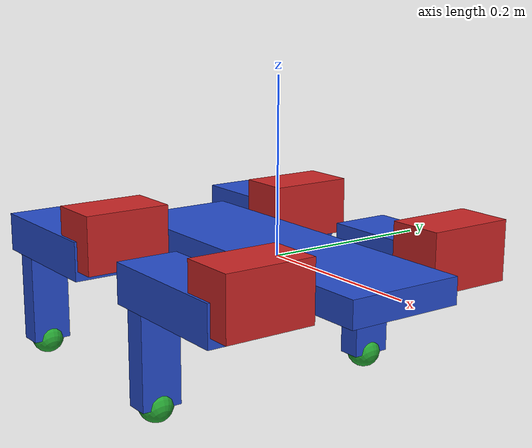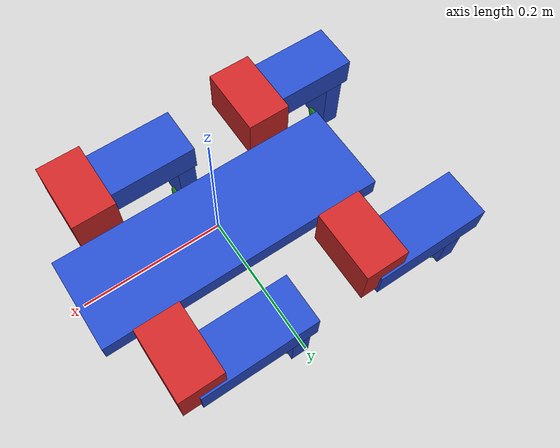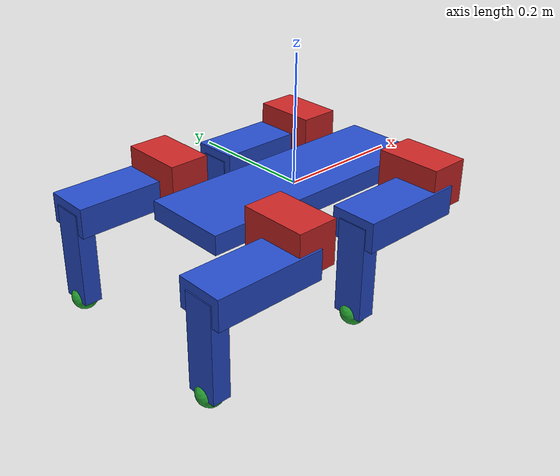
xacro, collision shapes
<?xml version='1.0'?>
<robot name="quadrus" xmlns:xacro="http://www.ros.org/wiki/xacro">

	<!-- Constants for robot dimensions, mass and inertia-->
	<xacro:property name="PI" value="3.1415926535897931"/>

	<xacro:property name="hip_offset" value="0.05925" />
	<xacro:property name="upperleg_length" value="0.1396" />
	<xacro:property name="upperleg_offset" value="0.01886" />
	<xacro:property name="lowerleg_length" value="0.1296" />

	<xacro:property name="rear_hip_long_offset" value="-0.1486" />
	<xacro:property name="hip_long_center_dist" value="0.2686" />
	<xacro:property name="hip_lat_center_dist" value="0.178" />

	<!-- Import Rviz colors -->
	<xacro:include filename="$(find qd_simulation)/robot_description/materials.xacro" />
	<!-- Import all Gazebo-customization elements, including Gazebo colors -->
	<xacro:include filename="$(find qd_simulation)/robot_description/quadrus.gazebo" />

	<!-- Used for fixing robot to Gazebo's base link -->
	<link name="base_link"/>

	<joint name="floating" type="fixed">
		<parent link="base_link"/>
		<child link="chassis"/>
		<origin xyz="0 0 0"/>
	</joint>

	<!-- Chassis -->
		<link name="chassis">
			<visual>
				<origin xyz="0 0 0" rpy="0 0 0" />
				<geometry>
					<mesh filename="package://qd_simulation/robot_description/mesh/body.dae"/>
				</geometry>
				<material name="blue" />
			</visual>

			<collision>
				<origin xyz="0 0 0" rpy="0 0 0" />
				<geometry>
					<box size="0.4172 0.136 0.03"/>
					<!-- mesh filename="package://qd_simulation/robot_description/mesh/body.dae"/-->
				</geometry>
			</collision>

			<inertial>
				<mass value="0.97859"/>
				<origin xyz="-0.01428 0.00536 -0.00018"/>
				<inertia ixx="0.00307" ixy="-0.00006" ixz="0.00006" iyy="0.01728" iyz="0.00003" izz="0.02001"/>
			</inertial>

		</link>

		<gazebo reference="chassis">
			<material>Gazebo/Blue</material>
			<gravity>true</gravity>
		</gazebo>

	<xacro:macro name="quadrus_leg" params="long lat id">
		<!-- Hip -->
			<xacro:property name="hip_joint_id" value="J${(id-1)*3+1}"/>

			<link name="link_${long}_${lat}_hip">
				<visual>
					<xacro:if value="${lat == 'left'}">
						<origin xyz="0 0 0" rpy="0 0 0" />
						<geometry>
							<mesh filename="package://qd_simulation/robot_description/mesh/left_hip.dae"/>
						</geometry>
					</xacro:if>

					<xacro:if value="${lat == 'right'}">
						<origin xyz="0 0 0" rpy="0 0 0" />
						<geometry>
							<mesh filename="package://qd_simulation/robot_description/mesh/right_hip.dae"/>
						</geometry>
					</xacro:if>

					<material name="red"/>
				</visual>

				<collision>
					<xacro:if value="${lat == 'left'}">
						<origin xyz="0.014 0.04125 0.0147" rpy="0 0 0" />
						<geometry>
							<box size="0.064 0.103 0.0685"/>
							<!-- mesh filename="package://qd_simulation/robot_description/mesh/left_hip.dae"/-->
						</geometry>
					</xacro:if>

					<xacro:if value="${lat == 'right'}">
						<origin xyz="0.014 -0.04125 0.0147" rpy="0 0 0" />
						<geometry>
							<box size="0.064 0.103 0.0685"/>
							<!-- mesh filename="package://qd_simulation/robot_description/mesh/right_hip.dae"/-->
						</geometry>
					</xacro:if>
				</collision>

				<inertial>
					<mass value="0.1191"/>
					<origin xyz="0.00364 0.0025 0.01974"/>
					<inertia ixx="0.000176" ixy="-0.000004" ixz="-0.000017" iyy="0.000131" iyz="-0.000021" izz="0.000108"/>
				</inertial>

			</link>

			<joint name="${hip_joint_id}" type="revolute">
				<parent link="chassis"/>
				<child link="link_${long}_${lat}_hip"/>

				<xacro:if value="${long == 'front' and lat == 'left'}">
					<origin xyz="${rear_hip_long_offset+hip_long_center_dist} ${hip_lat_center_dist/2.0} 0" rpy="0 0 0" />
					<limit effort="30" velocity="10" lower="-0.401" upper="0.785" />
				</xacro:if>

				<xacro:if value="${long == 'front' and lat == 'right'}">
					<origin xyz="${rear_hip_long_offset+hip_long_center_dist} ${-hip_lat_center_dist/2.0} 0" rpy="0 0 0" />
					<limit effort="30" velocity="10" lower="-0.785" upper="0.401" />
				</xacro:if>

				<xacro:if value="${long == 'back' and lat == 'left'}">
					<origin xyz="${rear_hip_long_offset} ${hip_lat_center_dist/2.0} 0" rpy="0 0 0" />
					<limit effort="30" velocity="10" lower="-0.401" upper="0.785" />
				</xacro:if>

				<xacro:if value="${long == 'back' and lat == 'right'}">
					<origin xyz="${rear_hip_long_offset} ${-hip_lat_center_dist/2.0} 0" rpy="0 0 0" />
					<limit effort="30" velocity="10" lower="-0.785" upper="0.401" />
				</xacro:if>

				<axis xyz="1 0 0" />

			</joint>

			<transmission name="transmission_${long}_${lat}_hip">
				<type>transmission_interface/SimpleTransmission</type>
				<joint name="${hip_joint_id}">
					<hardwareInterface>hardware_interface/EffortJointInterface</hardwareInterface>
				</joint>
				<actuator name="motor_${long}_${lat}_hip">
					<mechanicalReduction>1</mechanicalReduction>
					<hardwareInterface>hardware_interface/EffortJointInterface</hardwareInterface>
				</actuator>
			</transmission>

			<gazebo reference="link_${long}_${lat}_hip">
				<material>Gazebo/Red</material>
				<gravity>true</gravity>
			</gazebo>

		<!-- Upperleg -->
			<xacro:property name="upperleg_joint_id" value="J${(id-1)*3+2}"/>

			<link name="link_${long}_${lat}_upperleg">
				<visual>
					<xacro:if value="${lat == 'left'}">
						<origin xyz="0 0 0" rpy="0 0 0" />
						<geometry>
							<mesh filename="package://qd_simulation/robot_description/mesh/left_femur.dae"/>
						</geometry>
					</xacro:if>

					<xacro:if value="${lat == 'right'}">
						<origin xyz="0 0 0" rpy="0 0 0" />
						<geometry>
							<mesh filename="package://qd_simulation/robot_description/mesh/right_femur.dae" />
						</geometry>
					</xacro:if>
					<material name="blue" />
				</visual>
				<collision>
					<xacro:if value="${lat == 'left'}">
						<origin xyz="-0.066 0 -0.008" rpy="0 0 0" />
						<geometry>
							<box size="0.172 0.073 0.046"/>
							<!-- mesh filename="package://qd_simulation/robot_description/mesh/left_femur.dae"/-->
						</geometry>
					</xacro:if>

					<xacro:if value="${lat == 'right'}">
						<origin xyz="-0.066 0 -0.008" rpy="0 0 0" />
						<geometry>
							<box size="0.172 0.073 0.046"/>
							<!-- mesh filename="package://qd_simulation/robot_description/mesh/right_femur.dae"/-->
						</geometry>
					</xacro:if>
				</collision>

				<inertial>
					<mass value="0.13118"/>
					<origin xyz="-0.041697 -0.007043 -0.000214"/>
					<inertia ixx="0.000042" ixy="-0.000009" ixz="0.000011" iyy="0.000283" iyz="0.000002" izz="0.000310"/>
				</inertial>

			</link>

			<joint name="${upperleg_joint_id}" type="revolute">
				<parent link="link_${long}_${lat}_hip"/>
				<child link="link_${long}_${lat}_upperleg"/>

				<xacro:if value="${lat == 'left'}">
					<origin xyz="0 ${hip_offset} 0" rpy="0 0 0" />
					<limit effort="30" velocity="10" lower="-1.5" upper="0.7" />
				</xacro:if>

				<xacro:if value="${lat == 'right'}">
					<origin xyz="0 ${-hip_offset} 0" rpy="0 0 0" />
					<limit effort="1" velocity="1.0" lower="-1.5" upper="0.7" />
				</xacro:if>

				<axis xyz="0 1 0" />

			</joint>

			<transmission name="transmission_${long}_${lat}_upperleg">
				<type>transmission_interface/SimpleTransmission</type>
				<joint name="${upperleg_joint_id}">
					<hardwareInterface>hardware_interface/EffortJointInterface</hardwareInterface>
				</joint>
				<actuator name="motor_${long}_${lat}_upperleg">
					<mechanicalReduction>1</mechanicalReduction>
					<hardwareInterface>hardware_interface/EffortJointInterface</hardwareInterface>
				</actuator>
			</transmission>

			<gazebo reference="link_${long}_${lat}_upperleg">
				<material>Gazebo/White</material>
				<gravity>true</gravity>
			</gazebo>

		<!-- LowerLeg -->
			<xacro:property name="lowerleg_joint_id" value="J${(id-1)*3+3}"/>

			<link name="link_${long}_${lat}_lowerleg">
				<visual>
					<xacro:if value="${lat == 'left'}">
						<origin xyz="0 0 0" rpy="0 0 0" />
						<geometry>
							<mesh filename="package://qd_simulation/robot_description/mesh/left_tibia.dae"/>
						</geometry>
					</xacro:if>

					<xacro:if value="${lat == 'right'}">
						<origin xyz="0 0 0" rpy="0 0 0" />
						<geometry>
							<mesh filename="package://qd_simulation/robot_description/mesh/right_tibia.dae"/>
						</geometry>
					</xacro:if>

					<material name="blue"/>
				</visual>

				<collision>
					<xacro:if value="${lat == 'left'}">
						<origin xyz="0.055 0 0" rpy="0 0 0" />
						<geometry>
							<box size="0.15 0.048 0.028"/>
							<!-- mesh filename="package://qd_simulation/robot_description/mesh/left_tibia.dae"/-->
						</geometry>
					</xacro:if>

					<xacro:if value="${lat == 'right'}">
						<origin xyz="0.055 0 0" rpy="0 0 0" />
						<geometry>
							<box size="0.15 0.048 0.028"/>
							<!-- mesh filename="package://qd_simulation/robot_description/mesh/right_tibia.dae"/-->
						</geometry>
					</xacro:if>

				</collision>

				<inertial>
					<mass value="0.10059"/>
					<origin xyz=" 0.025048 -0.002594 0.000523"/>
					<inertia ixx="0.000017" ixy="0.000001" ixz="0.000004" iyy="0.000149" iyz="0.0" izz="0.000158"/>
				</inertial>

			</link>

			<joint name="${lowerleg_joint_id}" type="revolute">
				<parent link="link_${long}_${lat}_upperleg"/>
				<child link="link_${long}_${lat}_lowerleg"/>
				<origin xyz="${-upperleg_length} 0 ${-upperleg_offset}" rpy="0 1.5708 0" />
				<axis xyz="0 1 0" />

				<xacro:if value="${lat == 'right'}">
					<limit effort="30" velocity="10" lower="-1.745" upper="1.396" />
				</xacro:if>

				<xacro:if value="${lat == 'left'}">
					<limit effort="30" velocity="10" lower="-1.396" upper="1.745" />
				</xacro:if>

			</joint>

			<transmission name="transmission_${long}_${lat}_lowerleg">
				<type>transmission_interface/SimpleTransmission</type>
				<joint name="${lowerleg_joint_id}">
					<hardwareInterface>hardware_interface/EffortJointInterface</hardwareInterface>
				</joint>
				<actuator name="motor_${long}_${lat}_lowerleg">
					<mechanicalReduction>1</mechanicalReduction>
					<hardwareInterface>hardware_interface/EffortJointInterface</hardwareInterface>
				</actuator>
			</transmission>

			<gazebo reference="link_${long}_${lat}_lowerleg">
				<material>Gazebo/White</material>
				<gravity>true</gravity>
			</gazebo>

		<!-- Paw -->
			<link name="link_${long}_${lat}_paw">
				<visual>
					<origin xyz="0 0 0" rpy="0 0 0" />
					<geometry>
						<mesh filename="package://qd_simulation/robot_description/mesh/tpe_tip.dae"/>
					</geometry>
					<material name="green"/>
				</visual>

				<collision>
					<origin xyz="0 0 0" rpy="0 0 0" />
					<geometry>
						<sphere radius = "0.02"/>
						<!-- mesh filename="package://qd_simulation/robot_description/mesh/tpe_tip.dae"/-->
					</geometry>
				</collision>

				<inertial>
					<mass value="0.003"/>
					<inertia ixx="0.00001" ixy="0.0" ixz="0.0" iyy="0.00001" iyz="0.0" izz="0.00001"/>
				</inertial>

			</link>

			<joint name="joint_${long}_${lat}_paw" type="fixed">
				<parent link="link_${long}_${lat}_lowerleg"/>
				<child link="link_${long}_${lat}_paw"/>
				<origin xyz="${lowerleg_length} 0 0" rpy="0 0.698 0" />
			</joint>

			<gazebo reference="link_${long}_${lat}_paw">
				<material>Gazebo/Green</material>
				<gravity>true</gravity>
			</gazebo>

	</xacro:macro>

	<xacro:quadrus_leg long="front" lat="left" id="1"/>
	<xacro:quadrus_leg long="front" lat="right" id="2"/>
	<xacro:quadrus_leg long="back" lat="left" id="3"/>
	<xacro:quadrus_leg long="back" lat="right" id="4"/>

</robot>
